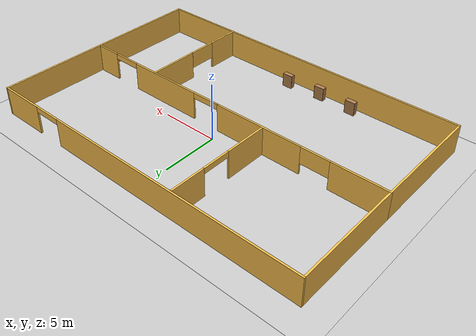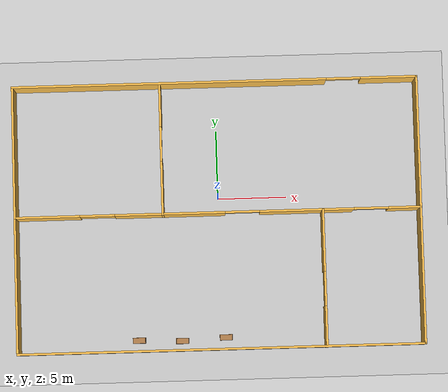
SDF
<sdf version="1.6">
 <world name="default">
  <model name="ground_plane">
   <static>1</static>
   <link name="link">
    <collision name="collision">
     <geometry><plane><normal>0 0 1</normal><size>100 100</size></plane></geometry>
     <surface>
      <contact><collide_bitmask>65535</collide_bitmask></contact>
      <friction><ode><mu>100</mu><mu2>50</mu2></ode></friction>
     </surface>
    </collision>
    <visual name="visual">
     <cast_shadows>0</cast_shadows>
     <geometry><plane><normal>0 0 1</normal><size>100 100</size></plane></geometry>
     <material>
      <script><uri>file://media/materials/scripts/gazebo.material</uri><name>Gazebo/Grey</name></script>
     </material>
    </visual>
   </link>
  </model>
  <model name="mybuild">
   <pose>-0.0244 -1.32563 0 0 -0 0</pose>
   <link name="Wall_0">
    <collision name="Wall_0_Collision">
     <geometry><box><size>10 0.15 2.5</size></box></geometry>
     <pose>0 0 1.25 0 -0 0</pose>
    </collision>
    <visual name="Wall_0_Visual">
     <pose>0 0 1.25 0 -0 0</pose>
     <geometry><box><size>10 0.15 2.5</size></box></geometry>
     <material>
      <script><uri>file://media/materials/scripts/gazebo.material</uri><name>Gazebo/Grey</name></script>
      <ambient>1 0.764706 0.305882 1</ambient>
     </material>
     <meta><layer>0</layer></meta>
    </visual>
    <pose>-14.675 -4.73543 0 0 0 -1.5708</pose>
   </link>
   <link name="Wall_1">
    <collision name="Wall_1_Collision">
     <geometry><box><size>29.5 0.15 2.5</size></box></geometry>
     <pose>0 0 1.25 0 -0 0</pose>
    </collision>
    <visual name="Wall_1_Visual">
     <pose>0 0 1.25 0 -0 0</pose>
     <geometry><box><size>29.5 0.15 2.5</size></box></geometry>
     <material>
      <script><uri>file://media/materials/scripts/gazebo.material</uri><name>Gazebo/Grey</name></script>
      <ambient>1 0.764706 0.305882 1</ambient>
     </material>
     <meta><layer>0</layer></meta>
    </visual>
    <pose>0 -9.66043 0 0 -0 0</pose>
   </link>
   <link name="Wall_2">
    <collision name="Wall_2_Collision">
     <geometry><box><size>19.5 0.15 2.5</size></box></geometry>
     <pose>0 0 1.25 0 -0 0</pose>
    </collision>
    <visual name="Wall_2_Visual">
     <pose>0 0 1.25 0 -0 0</pose>
     <geometry><box><size>19.5 0.15 2.5</size></box></geometry>
     <material>
      <script><uri>file://media/materials/scripts/gazebo.material</uri><name>Gazebo/Grey</name></script>
      <ambient>1 0.764706 0.305882 1</ambient>
     </material>
     <meta><layer>0</layer></meta>
    </visual>
    <pose>14.675 0.014573 0 0 -0 1.5708</pose>
   </link>
   <link name="Wall_3">
    <pose>0 9.68957 0 0 -0 3.14159</pose>
    <visual name="Wall_3_Visual_0">
     <pose>-12.6853 0 1.25 0 -0 0</pose>
     <geometry><box><size>4.12944 0.15 2.5</size></box></geometry>
     <material>
      <script><uri>file://media/materials/scripts/gazebo.material</uri><name>Gazebo/Grey</name></script>
      <ambient>1 0.764706 0.305882 1</ambient>
     </material>
     <meta><layer>0</layer></meta>
    </visual>
    <collision name="Wall_3_Collision_0">
     <geometry><box><size>4.12944 0.15 2.5</size></box></geometry>
     <pose>-12.6853 0 1.25 0 -0 0</pose>
    </collision>
    <visual name="Wall_3_Visual_1">
     <pose>3.31472 0 1.25 0 -0 0</pose>
     <geometry><box><size>22.8706 0.15 2.5</size></box></geometry>
     <material>
      <script><uri>file://media/materials/scripts/gazebo.material</uri><name>Gazebo/Grey</name></script>
      <ambient>1 0.764706 0.305882 1</ambient>
     </material>
     <meta><layer>0</layer></meta>
    </visual>
    <collision name="Wall_3_Collision_1">
     <geometry><box><size>22.8706 0.15 2.5</size></box></geometry>
     <pose>3.31472 0 1.25 0 -0 0</pose>
    </collision>
    <visual name="Wall_3_Visual_2">
     <pose>-9.37056 0 2.25 0 -0 0</pose>
     <geometry><box><size>2.5 0.15 0.5</size></box></geometry>
     <material>
      <script><uri>file://media/materials/scripts/gazebo.material</uri><name>Gazebo/Grey</name></script>
      <ambient>1 0.764706 0.305882 1</ambient>
     </material>
     <meta><layer>0</layer></meta>
    </visual>
    <collision name="Wall_3_Collision_2">
     <geometry><box><size>2.5 0.15 0.5</size></box></geometry>
     <pose>-9.37056 0 2.25 0 -0 0</pose>
    </collision>
   </link>
   <link name="Wall_4">
    <collision name="Wall_4_Collision">
     <geometry><box><size>9.65 0.15 2.5</size></box></geometry>
     <pose>0 0 1.25 0 -0 0</pose>
    </collision>
    <visual name="Wall_4_Visual">
     <pose>0 0 1.25 0 -0 0</pose>
     <geometry><box><size>9.65 0.15 2.5</size></box></geometry>
     <material>
      <script><uri>file://media/materials/scripts/gazebo.material</uri><name>Gazebo/Grey</name></script>
      <ambient>1 0.764706 0.305882 1</ambient>
     </material>
     <meta><layer>0</layer></meta>
    </visual>
    <pose>-14.675 4.93957 0 0 0 -1.5708</pose>
   </link>
   <link name="Wall_5">
    <pose>0 0.189573 0 0 -0 0</pose>
    <visual name="Wall_5_Visual_0">
     <pose>-12.3566 0 1.25 0 -0 0</pose>
     <geometry><box><size>4.78671 0.15 2.5</size></box></geometry>
     <material>
      <script><uri>file://media/materials/scripts/gazebo.material</uri><name>Gazebo/Grey</name></script>
      <ambient>1 0.764706 0.305882 1</ambient>
     </material>
     <meta><layer>0</layer></meta>
    </visual>
    <collision name="Wall_5_Collision_0">
     <geometry><box><size>4.78671 0.15 2.5</size></box></geometry>
     <pose>-12.3566 0 1.25 0 -0 0</pose>
    </collision>
    <visual name="Wall_5_Visual_1">
     <pose>-3.47004 0 1.25 0 -0 0</pose>
     <geometry><box><size>7.98649 0.15 2.5</size></box></geometry>
     <material>
      <script><uri>file://media/materials/scripts/gazebo.material</uri><name>Gazebo/Grey</name></script>
      <ambient>1 0.764706 0.305882 1</ambient>
     </material>
     <meta><layer>0</layer></meta>
    </visual>
    <collision name="Wall_5_Collision_1">
     <geometry><box><size>7.98649 0.15 2.5</size></box></geometry>
     <pose>-3.47004 0 1.25 0 -0 0</pose>
    </collision>
    <visual name="Wall_5_Visual_2">
     <pose>6.42792 0 1.25 0 -0 0</pose>
     <geometry><box><size>6.80943 0.15 2.5</size></box></geometry>
     <material>
      <script><uri>file://media/materials/scripts/gazebo.material</uri><name>Gazebo/Grey</name></script>
      <ambient>1 0.764706 0.305882 1</ambient>
     </material>
     <meta><layer>0</layer></meta>
    </visual>
    <collision name="Wall_5_Collision_2">
     <geometry><box><size>6.80943 0.15 2.5</size></box></geometry>
     <pose>6.42792 0 1.25 0 -0 0</pose>
    </collision>
    <visual name="Wall_5_Visual_3">
     <pose>13.5413 0 1.25 0 -0 0</pose>
     <geometry><box><size>2.41736 0.15 2.5</size></box></geometry>
     <material>
      <script><uri>file://media/materials/scripts/gazebo.material</uri><name>Gazebo/Grey</name></script>
      <ambient>1 0.764706 0.305882 1</ambient>
     </material>
     <meta><layer>0</layer></meta>
    </visual>
    <collision name="Wall_5_Collision_3">
     <geometry><box><size>2.41736 0.15 2.5</size></box></geometry>
     <pose>13.5413 0 1.25 0 -0 0</pose>
    </collision>
    <visual name="Wall_5_Visual_4">
     <pose>-8.71329 0 1.75 0 -0 0</pose>
     <geometry><box><size>2.5 0.15 1.5</size></box></geometry>
     <material>
      <script><uri>file://media/materials/scripts/gazebo.material</uri><name>Gazebo/Grey</name></script>
      <ambient>1 0.764706 0.305882 1</ambient>
     </material>
     <meta><layer>0</layer></meta>
    </visual>
    <collision name="Wall_5_Collision_4">
     <geometry><box><size>2.5 0.15 1.5</size></box></geometry>
     <pose>-8.71329 0 1.75 0 -0 0</pose>
    </collision>
    <visual name="Wall_5_Visual_5">
     <pose>1.7732 0 2.25 0 -0 0</pose>
     <geometry><box><size>2.5 0.15 0.5</size></box></geometry>
     <material>
      <script><uri>file://media/materials/scripts/gazebo.material</uri><name>Gazebo/Grey</name></script>
      <ambient>1 0.764706 0.305882 1</ambient>
     </material>
     <meta><layer>0</layer></meta>
    </visual>
    <collision name="Wall_5_Collision_5">
     <geometry><box><size>2.5 0.15 0.5</size></box></geometry>
     <pose>1.7732 0 2.25 0 -0 0</pose>
    </collision>
    <visual name="Wall_5_Visual_6">
     <pose>11.0826 0 2.25 0 -0 0</pose>
     <geometry><box><size>2.5 0.15 0.5</size></box></geometry>
     <material>
      <script><uri>file://media/materials/scripts/gazebo.material</uri><name>Gazebo/Grey</name></script>
      <ambient>1 0.764706 0.305882 1</ambient>
     </material>
     <meta><layer>0</layer></meta>
    </visual>
    <collision name="Wall_5_Collision_6">
     <geometry><box><size>2.5 0.15 0.5</size></box></geometry>
     <pose>11.0826 0 2.25 0 -0 0</pose>
    </collision>
   </link>
   <link name="Wall_7">
    <pose>-3.98494 4.8467 0 0 -0 1.5708</pose>
    <visual name="Wall_7_Visual_0">
     <pose>-2.78299 0 1.25 0 -0 0</pose>
     <geometry><box><size>3.93402 0.15 2.5</size></box></geometry>
     <material>
      <script><uri>file://media/materials/scripts/gazebo.material</uri><name>Gazebo/Grey</name></script>
      <ambient>1 0.764706 0.305882 1</ambient>
     </material>
     <meta><layer>0</layer></meta>
    </visual>
    <collision name="Wall_7_Collision_0">
     <geometry><box><size>3.93402 0.15 2.5</size></box></geometry>
     <pose>-2.78299 0 1.25 0 -0 0</pose>
    </collision>
    <visual name="Wall_7_Visual_1">
     <pose>3.21701 0 1.25 0 -0 0</pose>
     <geometry><box><size>3.06598 0.15 2.5</size></box></geometry>
     <material>
      <script><uri>file://media/materials/scripts/gazebo.material</uri><name>Gazebo/Grey</name></script>
      <ambient>1 0.764706 0.305882 1</ambient>
     </material>
     <meta><layer>0</layer></meta>
    </visual>
    <collision name="Wall_7_Collision_1">
     <geometry><box><size>3.06598 0.15 2.5</size></box></geometry>
     <pose>3.21701 0 1.25 0 -0 0</pose>
    </collision>
    <visual name="Wall_7_Visual_2">
     <pose>0.434022 0 2.25 0 -0 0</pose>
     <geometry><box><size>2.5 0.15 0.5</size></box></geometry>
     <material>
      <script><uri>file://media/materials/scripts/gazebo.material</uri><name>Gazebo/Grey</name></script>
      <ambient>1 0.764706 0.305882 1</ambient>
     </material>
     <meta><layer>0</layer></meta>
    </visual>
    <collision name="Wall_7_Collision_2">
     <geometry><box><size>2.5 0.15 0.5</size></box></geometry>
     <pose>0.434022 0 2.25 0 -0 0</pose>
    </collision>
   </link>
   <link name="Wall_9">
    <pose>7.60023 -4.76457 0 0 0 -1.5708</pose>
    <visual name="Wall_9_Visual_0">
     <pose>-2.74389 0 1.25 0 -0 0</pose>
     <geometry><box><size>4.51221 0.15 2.5</size></box></geometry>
     <material>
      <script><uri>file://media/materials/scripts/gazebo.material</uri><name>Gazebo/Grey</name></script>
      <ambient>1 0.764706 0.305882 1</ambient>
     </material>
     <meta><layer>0</layer></meta>
    </visual>
    <collision name="Wall_9_Collision_0">
     <geometry><box><size>4.51221 0.15 2.5</size></box></geometry>
     <pose>-2.74389 0 1.25 0 -0 0</pose>
    </collision>
    <visual name="Wall_9_Visual_1">
     <pose>3.50611 0 1.25 0 -0 0</pose>
     <geometry><box><size>2.98779 0.15 2.5</size></box></geometry>
     <material>
      <script><uri>file://media/materials/scripts/gazebo.material</uri><name>Gazebo/Grey</name></script>
      <ambient>1 0.764706 0.305882 1</ambient>
     </material>
     <meta><layer>0</layer></meta>
    </visual>
    <collision name="Wall_9_Collision_1">
     <geometry><box><size>2.98779 0.15 2.5</size></box></geometry>
     <pose>3.50611 0 1.25 0 -0 0</pose>
    </collision>
    <visual name="Wall_9_Visual_2">
     <pose>0.762212 0 1.75 0 -0 0</pose>
     <geometry><box><size>2.5 0.15 1.5</size></box></geometry>
     <material>
      <script><uri>file://media/materials/scripts/gazebo.material</uri><name>Gazebo/Grey</name></script>
      <ambient>1 0.764706 0.305882 1</ambient>
     </material>
     <meta><layer>0</layer></meta>
    </visual>
    <collision name="Wall_9_Collision_2">
     <geometry><box><size>2.5 0.15 1.5</size></box></geometry>
     <pose>0.762212 0 1.75 0 -0 0</pose>
    </collision>
   </link>
   <static>1</static>
  </model>
  <model name="bookshelf_0">
   <static>1</static>
   <link name="link">
    <inertial><mass>1</mass></inertial>
    <collision name="back">
     <pose>0 0.005 0.6 0 -0 0</pose>
     <geometry><box><size>0.9 0.01 1.2</size></box></geometry>
    </collision>
    <visual name="visual1">
     <pose>0 0.005 0.6 0 -0 0</pose>
     <geometry><box><size>0.9 0.01 1.2</size></box></geometry>
     <material>
      <script><uri>file://media/materials/scripts/gazebo.material</uri><name>Gazebo/Wood</name></script>
     </material>
    </visual>
    <collision name="left_side">
     <pose>0.45 -0.195 0.6 0 -0 0</pose>
     <geometry><box><size>0.02 0.4 1.2</size></box></geometry>
    </collision>
    <visual name="visual2">
     <pose>0.45 -0.195 0.6 0 -0 0</pose>
     <geometry><box><size>0.02 0.4 1.2</size></box></geometry>
     <material>
      <script><uri>file://media/materials/scripts/gazebo.material</uri><name>Gazebo/Wood</name></script>
     </material>
    </visual>
    <collision name="right_side">
     <pose>-0.45 -0.195 0.6 0 -0 0</pose>
     <geometry><box><size>0.02 0.4 1.2</size></box></geometry>
    </collision>
    <visual name="visual3">
     <pose>-0.45 -0.195 0.6 0 -0 0</pose>
     <geometry><box><size>0.02 0.4 1.2</size></box></geometry>
     <material>
      <script><uri>file://media/materials/scripts/gazebo.material</uri><name>Gazebo/Wood</name></script>
     </material>
    </visual>
    <collision name="bottom">
     <pose>0 -0.195 0.03 0 -0 0</pose>
     <geometry><box><size>0.88 0.4 0.06</size></box></geometry>
    </collision>
    <visual name="visual4">
     <pose>0 -0.195 0.03 0 -0 0</pose>
     <geometry><box><size>0.88 0.4 0.06</size></box></geometry>
     <material>
      <script><uri>file://media/materials/scripts/gazebo.material</uri><name>Gazebo/Wood</name></script>
     </material>
    </visual>
    <collision name="top">
     <pose>0 -0.195 1.19 0 -0 0</pose>
     <geometry><box><size>0.88 0.4 0.02</size></box></geometry>
    </collision>
    <visual name="visual5">
     <pose>0 -0.195 1.19 0 -0 0</pose>
     <geometry><box><size>0.88 0.4 0.02</size></box></geometry>
     <material>
      <script><uri>file://media/materials/scripts/gazebo.material</uri><name>Gazebo/Wood</name></script>
     </material>
    </visual>
    <collision name="low_shelf">
     <pose>0 -0.195 0.43 0 -0 0</pose>
     <geometry><box><size>0.88 0.4 0.02</size></box></geometry>
    </collision>
    <visual name="visual6">
     <pose>0 -0.195 0.43 0 -0 0</pose>
     <geometry><box><size>0.88 0.4 0.02</size></box></geometry>
     <material>
      <script><uri>file://media/materials/scripts/gazebo.material</uri><name>Gazebo/Wood</name></script>
     </material>
    </visual>
    <collision name="high_shelf">
     <pose>0 -0.195 0.8 0 -0 0</pose>
     <geometry><box><size>0.88 0.4 0.02</size></box></geometry>
    </collision>
    <visual name="visual7">
     <pose>0 -0.195 0.8 0 -0 0</pose>
     <geometry><box><size>0.88 0.4 0.02</size></box></geometry>
     <material>
      <script><uri>file://media/materials/scripts/gazebo.material</uri><name>Gazebo/Wood</name></script>
     </material>
    </visual>
   </link>
   <pose>-5.98214 -10.0022 0 0 -0 0</pose>
  </model>
  <model name="bookshelf_1">
   <static>1</static>
   <link name="link">
    <inertial><mass>1</mass></inertial>
    <collision name="back">
     <pose>0 0.005 0.6 0 -0 0</pose>
     <geometry><box><size>0.9 0.01 1.2</size></box></geometry>
    </collision>
    <visual name="visual1">
     <pose>0 0.005 0.6 0 -0 0</pose>
     <geometry><box><size>0.9 0.01 1.2</size></box></geometry>
     <material>
      <script><uri>file://media/materials/scripts/gazebo.material</uri><name>Gazebo/Wood</name></script>
     </material>
    </visual>
    <collision name="left_side">
     <pose>0.45 -0.195 0.6 0 -0 0</pose>
     <geometry><box><size>0.02 0.4 1.2</size></box></geometry>
    </collision>
    <visual name="visual2">
     <pose>0.45 -0.195 0.6 0 -0 0</pose>
     <geometry><box><size>0.02 0.4 1.2</size></box></geometry>
     <material>
      <script><uri>file://media/materials/scripts/gazebo.material</uri><name>Gazebo/Wood</name></script>
     </material>
    </visual>
    <collision name="right_side">
     <pose>-0.45 -0.195 0.6 0 -0 0</pose>
     <geometry><box><size>0.02 0.4 1.2</size></box></geometry>
    </collision>
    <visual name="visual3">
     <pose>-0.45 -0.195 0.6 0 -0 0</pose>
     <geometry><box><size>0.02 0.4 1.2</size></box></geometry>
     <material>
      <script><uri>file://media/materials/scripts/gazebo.material</uri><name>Gazebo/Wood</name></script>
     </material>
    </visual>
    <collision name="bottom">
     <pose>0 -0.195 0.03 0 -0 0</pose>
     <geometry><box><size>0.88 0.4 0.06</size></box></geometry>
    </collision>
    <visual name="visual4">
     <pose>0 -0.195 0.03 0 -0 0</pose>
     <geometry><box><size>0.88 0.4 0.06</size></box></geometry>
     <material>
      <script><uri>file://media/materials/scripts/gazebo.material</uri><name>Gazebo/Wood</name></script>
     </material>
    </visual>
    <collision name="top">
     <pose>0 -0.195 1.19 0 -0 0</pose>
     <geometry><box><size>0.88 0.4 0.02</size></box></geometry>
    </collision>
    <visual name="visual5">
     <pose>0 -0.195 1.19 0 -0 0</pose>
     <geometry><box><size>0.88 0.4 0.02</size></box></geometry>
     <material>
      <script><uri>file://media/materials/scripts/gazebo.material</uri><name>Gazebo/Wood</name></script>
     </material>
    </visual>
    <collision name="low_shelf">
     <pose>0 -0.195 0.43 0 -0 0</pose>
     <geometry><box><size>0.88 0.4 0.02</size></box></geometry>
    </collision>
    <visual name="visual6">
     <pose>0 -0.195 0.43 0 -0 0</pose>
     <geometry><box><size>0.88 0.4 0.02</size></box></geometry>
     <material>
      <script><uri>file://media/materials/scripts/gazebo.material</uri><name>Gazebo/Wood</name></script>
     </material>
    </visual>
    <collision name="high_shelf">
     <pose>0 -0.195 0.8 0 -0 0</pose>
     <geometry><box><size>0.88 0.4 0.02</size></box></geometry>
    </collision>
    <visual name="visual7">
     <pose>0 -0.195 0.8 0 -0 0</pose>
     <geometry><box><size>0.88 0.4 0.02</size></box></geometry>
     <material>
      <script><uri>file://media/materials/scripts/gazebo.material</uri><name>Gazebo/Wood</name></script>
     </material>
    </visual>
   </link>
   <pose>-2.84452 -10.1152 0 0 -0 0</pose>
  </model>
  <model name="bookshelf_2">
   <static>1</static>
   <link name="link">
    <inertial><mass>1</mass></inertial>
    <collision name="back">
     <pose>0 0.005 0.6 0 -0 0</pose>
     <geometry><box><size>0.9 0.01 1.2</size></box></geometry>
    </collision>
    <visual name="visual1">
     <pose>0 0.005 0.6 0 -0 0</pose>
     <geometry><box><size>0.9 0.01 1.2</size></box></geometry>
     <material>
      <script><uri>file://media/materials/scripts/gazebo.material</uri><name>Gazebo/Wood</name></script>
     </material>
    </visual>
    <collision name="left_side">
     <pose>0.45 -0.195 0.6 0 -0 0</pose>
     <geometry><box><size>0.02 0.4 1.2</size></box></geometry>
    </collision>
    <visual name="visual2">
     <pose>0.45 -0.195 0.6 0 -0 0</pose>
     <geometry><box><size>0.02 0.4 1.2</size></box></geometry>
     <material>
      <script><uri>file://media/materials/scripts/gazebo.material</uri><name>Gazebo/Wood</name></script>
     </material>
    </visual>
    <collision name="right_side">
     <pose>-0.45 -0.195 0.6 0 -0 0</pose>
     <geometry><box><size>0.02 0.4 1.2</size></box></geometry>
    </collision>
    <visual name="visual3">
     <pose>-0.45 -0.195 0.6 0 -0 0</pose>
     <geometry><box><size>0.02 0.4 1.2</size></box></geometry>
     <material>
      <script><uri>file://media/materials/scripts/gazebo.material</uri><name>Gazebo/Wood</name></script>
     </material>
    </visual>
    <collision name="bottom">
     <pose>0 -0.195 0.03 0 -0 0</pose>
     <geometry><box><size>0.88 0.4 0.06</size></box></geometry>
    </collision>
    <visual name="visual4">
     <pose>0 -0.195 0.03 0 -0 0</pose>
     <geometry><box><size>0.88 0.4 0.06</size></box></geometry>
     <material>
      <script><uri>file://media/materials/scripts/gazebo.material</uri><name>Gazebo/Wood</name></script>
     </material>
    </visual>
    <collision name="top">
     <pose>0 -0.195 1.19 0 -0 0</pose>
     <geometry><box><size>0.88 0.4 0.02</size></box></geometry>
    </collision>
    <visual name="visual5">
     <pose>0 -0.195 1.19 0 -0 0</pose>
     <geometry><box><size>0.88 0.4 0.02</size></box></geometry>
     <material>
      <script><uri>file://media/materials/scripts/gazebo.material</uri><name>Gazebo/Wood</name></script>
     </material>
    </visual>
    <collision name="low_shelf">
     <pose>0 -0.195 0.43 0 -0 0</pose>
     <geometry><box><size>0.88 0.4 0.02</size></box></geometry>
    </collision>
    <visual name="visual6">
     <pose>0 -0.195 0.43 0 -0 0</pose>
     <geometry><box><size>0.88 0.4 0.02</size></box></geometry>
     <material>
      <script><uri>file://media/materials/scripts/gazebo.material</uri><name>Gazebo/Wood</name></script>
     </material>
    </visual>
    <collision name="high_shelf">
     <pose>0 -0.195 0.8 0 -0 0</pose>
     <geometry><box><size>0.88 0.4 0.02</size></box></geometry>
    </collision>
    <visual name="visual7">
     <pose>0 -0.195 0.8 0 -0 0</pose>
     <geometry><box><size>0.88 0.4 0.02</size></box></geometry>
     <material>
      <script><uri>file://media/materials/scripts/gazebo.material</uri><name>Gazebo/Wood</name></script>
     </material>
    </visual>
   </link>
   <pose>0.326433 -9.94105 0 0 -0 0</pose>
  </model>
 </world>
</sdf>
